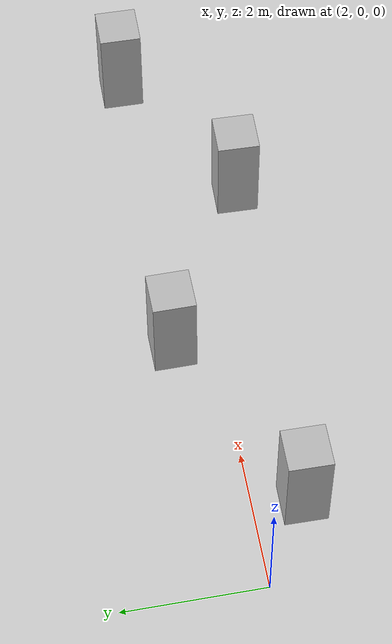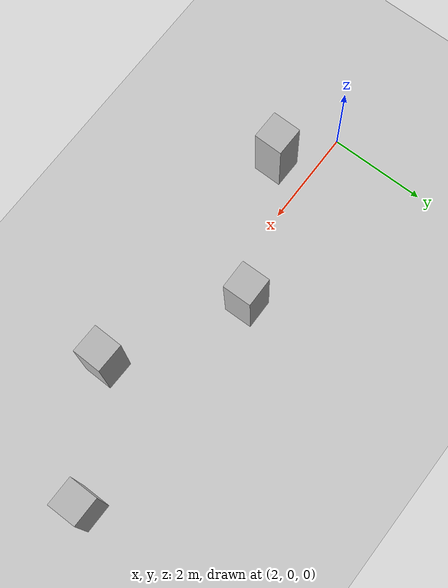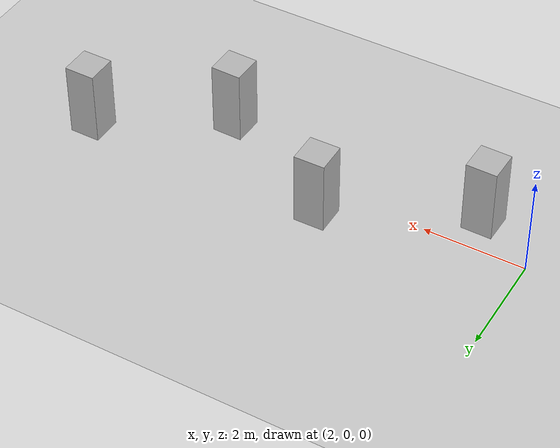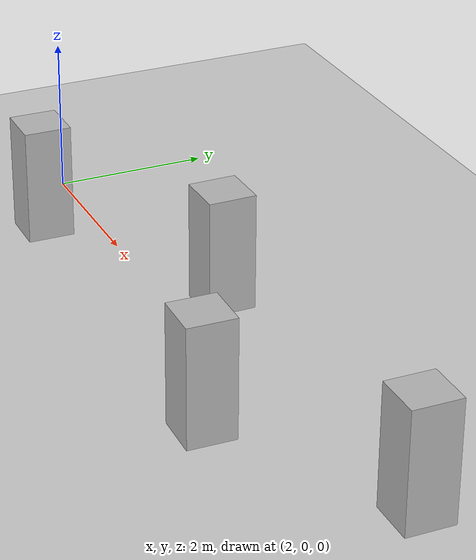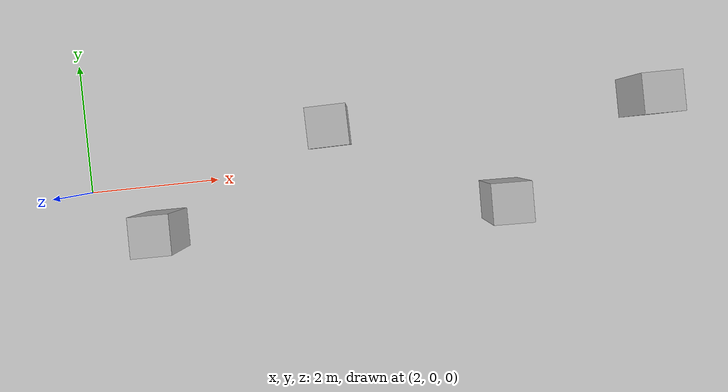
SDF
<?xml version="1.0"?>
<sdf version="1.6">
  <world name="v2-04g-r1-static-s4929">
    <gravity>0 0 -9.81</gravity>
    <physics name="v2_deterministic" type="ode">
      <max_step_size>0.002</max_step_size>
      <real_time_update_rate>500</real_time_update_rate>
    </physics>
    <include>
      <uri>model://sun</uri>
    </include>
    <include>
      <uri>model://ground_plane</uri>
    </include>
    <model name="pillar-1">
      <static>true</static>
      <pose>3.150683451 -0.679891680 0.750000000 0 0 -0.010304950</pose>
      <link name="link">
        <collision name="collision">
          <geometry>
            <box>
              <size>0.600000 0.600000 1.500000</size>
            </box>
          </geometry>
        </collision>
        <visual name="visual">
          <geometry>
            <box>
              <size>0.600000 0.600000 1.500000</size>
            </box>
          </geometry>
        </visual>
      </link>
    </model>
    <model name="pillar-2">
      <static>true</static>
      <pose>5.850329899 0.629814769 0.750000000 0 0 0.011542449</pose>
      <link name="link">
        <collision name="collision">
          <geometry>
            <box>
              <size>0.600000 0.600000 1.500000</size>
            </box>
          </geometry>
        </collision>
        <visual name="visual">
          <geometry>
            <box>
              <size>0.600000 0.600000 1.500000</size>
            </box>
          </geometry>
        </visual>
      </link>
    </model>
    <model name="pillar-3">
      <static>true</static>
      <pose>8.391871590 -0.752872349 0.750000000 0 0 -0.024630422</pose>
      <link name="link">
        <collision name="collision">
          <geometry>
            <box>
              <size>0.600000 0.600000 1.500000</size>
            </box>
          </geometry>
        </collision>
        <visual name="visual">
          <geometry>
            <box>
              <size>0.600000 0.600000 1.500000</size>
            </box>
          </geometry>
        </visual>
      </link>
    </model>
    <model name="pillar-4">
      <static>true</static>
      <pose>10.712702442 0.606351595 0.750000000 0 0 -0.008161049</pose>
      <link name="link">
        <collision name="collision">
          <geometry>
            <box>
              <size>0.600000 0.600000 1.500000</size>
            </box>
          </geometry>
        </collision>
        <visual name="visual">
          <geometry>
            <box>
              <size>0.600000 0.600000 1.500000</size>
            </box>
          </geometry>
        </visual>
      </link>
    </model>
  </world>
</sdf>
